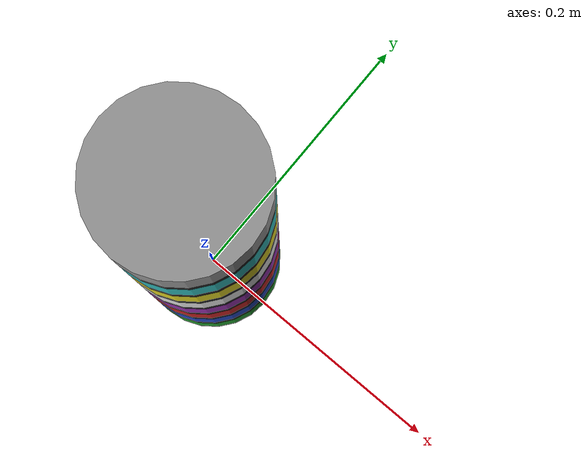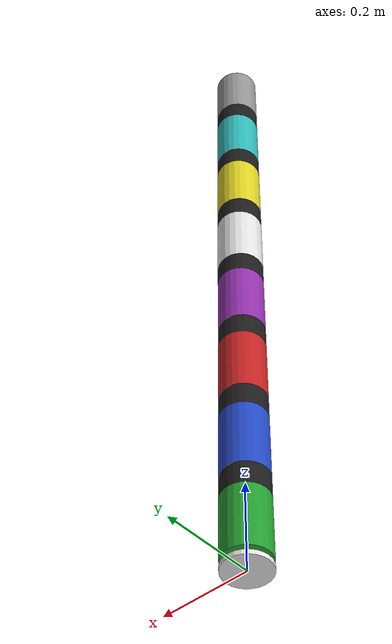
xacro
<?xml version="1.0"?>
<robot xmlns:xacro="http://www.ros.org/wiki/xacro" name="snake">

    <gazebo>
        <plugin name="gazebo_ros_control" filename="libgazebo_ros_control.so">
            <robotNamespace>/snake</robotNamespace>
        </plugin>
    </gazebo>

<plugin name="p3d_base_controller" filename="libgazebo_ros_p3d.so">
  <alwaysOn>true</alwaysOn>
  <updateRate>5.0</updateRate>
  <bodyName>base_link</bodyName>
  <topicName>odom</topicName>
  <gaussianNoise>0.01</gaussianNoise>
  <frameName>startpt</frameName>
  <xyzOffsets>0 0 0</xyzOffsets>
  <rpyOffsets>0 0 0</rpyOffsets>
</plugin>
    <!-- MACROS -->

    <xacro:macro name="body_link" params="base_name parent_name colour xx yy">

        <link name="${base_name}_aux">
            <inertial>
                <origin xyz="0 0 0.025" rpy="0 0 0"/>
                <mass value="0.1" />
                <inertia ixx="0.00025" ixy="0.0" ixz="0.0" iyy="0.00025" iyz="0.0" izz="0.000125"/>
            </inertial>
            <collision>
                <origin xyz="0 0 0.025" rpy="0 0 0"/>
                <geometry>
                    <cylinder radius="0.05" length="0.05"/>
                </geometry>
            </collision>
            <visual>
                <origin xyz="0 0 0.025" rpy="0 0 0"/>
                <geometry>
                    <cylinder radius="0.05" length="0.05"/>
                </geometry>
            </visual>
    	</link>

    	<gazebo reference="${base_name}_aux">
            <kp>1000000000.0</kp>
            <kd>1000000000.0</kd>
            <mu1>10.0</mu1>
            <mu2>10.0</mu2>
            <material>Gazebo/Black</material>
            <self_collide>0</self_collide>
        </gazebo>

        <link name="${base_name}">
     	    <inertial>
                <origin xyz="0 0 0.075" rpy="0 0 0"/>
                <mass value="0.1" />
                <inertia ixx="0.00025" ixy="0.0" ixz="0.0" iyy="0.00025" iyz="0.0" izz="0.000125"/>
            </inertial>
            <collision>
                <origin xyz="0 0 0.075" rpy="0 0 0"/>
                <geometry>
                    <cylinder radius="0.05" length="0.15"/>
                </geometry>
            </collision>
            <visual>
                <origin xyz="0 0 0.075" rpy="0 0 0"/>
                <geometry>
                    <cylinder radius="0.05" length="0.15"/>
                </geometry>
            </visual>
    	</link>

    	<gazebo reference="${base_name}">
            <kp>1000000000.0</kp>
            <kd>1000000000.0</kd>
            <mu1>10.0</mu1>
            <mu2>10.0</mu2>
            <material>Gazebo/${colour}</material>
            <self_collide>1</self_collide>
        </gazebo>

        <!-- We add to the Origin displacement a margin for flex due to self colisions for parent_name and base_name-->
        <joint name="${base_name}_aux_joint" type="revolute">
            <parent link="${parent_name}"/>
        	<child link="${base_name}_aux"/>
            <origin xyz="0 0 0.15" rpy="0 0 0"/>
            <limit lower="-1.8008" upper="1.8008" effort="20.0" velocity="3"/>
            <axis xyz="0 0 1"/>
    	</joint>

        <joint name="${base_name}_joint" type="revolute">
    	    <parent link="${base_name}_aux"/>
        	<child link="${base_name}"/>
            <origin xyz="0 0 0.05" rpy="0 0 0"/>
            <limit lower="-1.8008" upper="1.8008" effort="20.0" velocity="3"/>
            <axis xyz="${xx} ${yy} 0"/>
    	</joint>

	    <transmission name="tran${base_name}_aux">
            <type>transmission_interface/SimpleTransmission</type>
            <joint name="${base_name}_aux_joint">
                <hardwareInterface>EffortJointInterface</hardwareInterface>
            </joint>
            <actuator name="motor${base_name}_aux">
                <hardwareInterface>EffortJointInterface</hardwareInterface>
                <mechanicalReduction>1</mechanicalReduction>
            </actuator>
        </transmission>

        <transmission name="tran${base_name}">
            <type>transmission_interface/SimpleTransmission</type>
            <joint name="${base_name}_joint">
                <hardwareInterface>EffortJointInterface</hardwareInterface>
            </joint>
            <actuator name="motor${base_name}">
                <hardwareInterface>EffortJointInterface</hardwareInterface>
                <mechanicalReduction>1</mechanicalReduction>
            </actuator>
        </transmission>

    </xacro:macro>

	<!-- * * * Link Definitions * * * -->

    <link name="startpt">
	<inertial>
            <origin xyz="0 0 0.005" rpy="0 0 0"/>
            <mass value="0.01" />
            <inertia ixx="0.00001" ixy="0.0" ixz="0.0" iyy="0.00001" iyz="0.0" izz="0.00001"/>
        </inertial>
        <collision>
            <origin xyz="0 0 0.005" rpy="0 0 0"/>
            <geometry>
                <cylinder radius="0.05" length="0.1"/>
            </geometry>
        </collision>
        <visual>
            <origin xyz="0 0 0.005" rpy="0 0 0"/>
            <geometry>
                <cylinder radius="0.05" length="0.01"/>
            </geometry>
        </visual>
	</link>

    <gazebo reference="startpt">
        <kp>100000000000000.0</kp>
        <kd>100000000000000.0</kd>
        <mu1>10.0</mu1>
        <mu2>10.0</mu2>
        <material>Gazebo/White</material>
        <self_collide>0</self_collide>
    </gazebo>

    <link name="base_link">
 	    <inertial>
            <origin xyz="0 0 0.075" rpy="0 0 0"/>
            <mass value="0.1" />
            <inertia ixx="0.00025" ixy="0.0" ixz="0.0" iyy="0.00025" iyz="0.0" izz="0.000125"/>
        </inertial>
        <collision>
            <origin xyz="0 0 0.08" rpy="0 0 0"/>
            <geometry>
                <cylinder radius="0.05" length="0.14"/>
            </geometry>
        </collision>
        <visual>
            <origin xyz="0 0 0.08" rpy="0 0 0"/>
            <geometry>
                <cylinder radius="0.05" length="0.14"/>
            </geometry>
        </visual>
	</link>

    <gazebo reference="base_link">
        <kp>100000000000000.0</kp>
        <kd>100000000000000.0</kd>
        <mu1>10.0</mu1>
        <mu2>10.0</mu2>
        <material>Gazebo/Green</material>
        <self_collide>1</self_collide>
    </gazebo>

    <joint name="noreal" type="fixed">
    	    <parent link="startpt"/>
            <child link="base_link"/>
            <origin xyz="0 0 0.01" rpy="0 0 0"/>
    </joint>

    <xacro:body_link base_name="snake_body_1" parent_name="base_link" colour="Blue" xx="1"  yy="0" />
    <xacro:body_link base_name="snake_body_2" parent_name="snake_body_1" colour="Red" xx="1" yy="0" />
    <xacro:body_link base_name="snake_body_3" parent_name="snake_body_2" colour="Purple" xx="1" yy="0" />
    <xacro:body_link base_name="snake_body_4" parent_name="snake_body_3" colour="White" xx="1" yy="0" />
    <xacro:body_link base_name="snake_body_5" parent_name="snake_body_4" colour="Yellow" xx="1" yy="0"  />
    <xacro:body_link base_name="snake_body_6" parent_name="snake_body_5" colour="Turquoise" xx="1" yy="0" />
    <xacro:body_link base_name="snake_body_7" parent_name="snake_body_6" colour="Grey" xx="1" yy="0" />

</robot>
